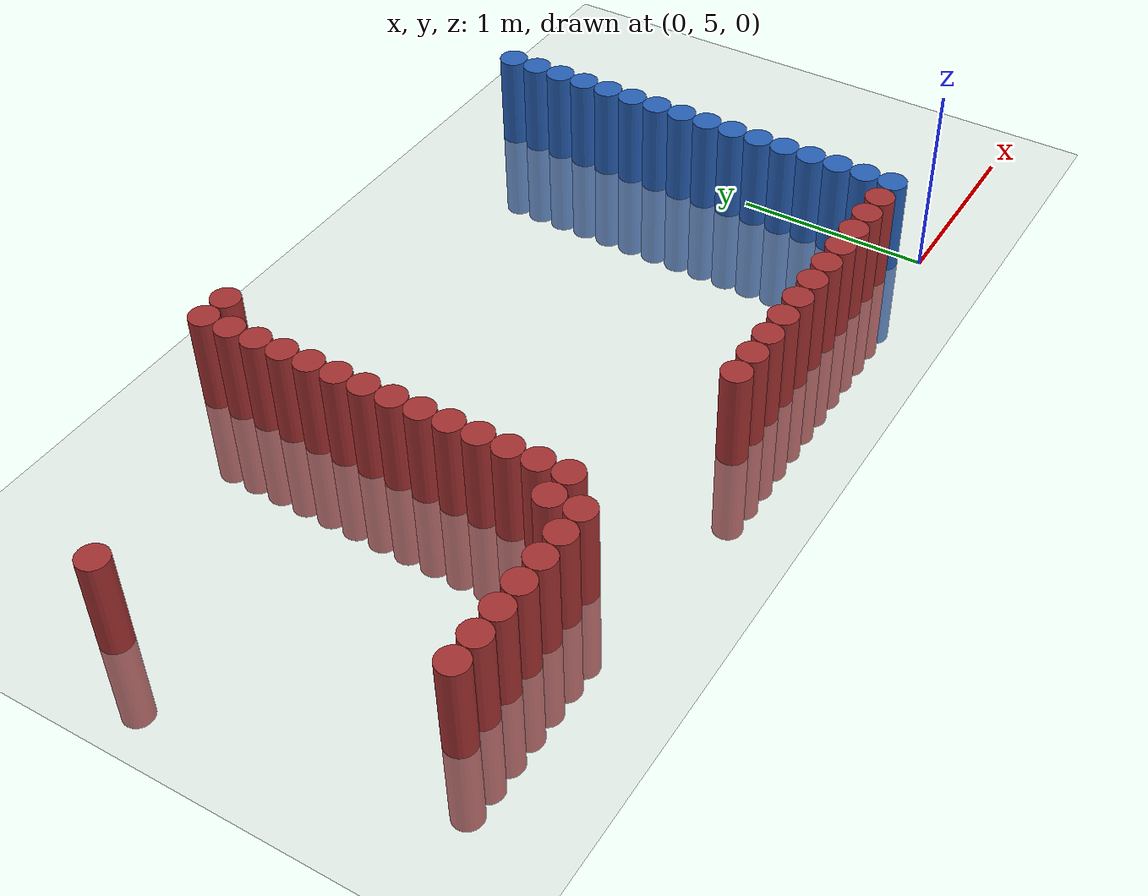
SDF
<sdf version="1.6">
 <world name="default">
  <model name="ground_plane">
   <static>1</static>
   <link name="link">
    <collision name="collision">
     <geometry><plane><normal>0 0 1</normal><size>100 100</size></plane></geometry>
     <surface><friction><ode><mu>100</mu><mu2>50</mu2></ode></friction></surface>
    </collision>
    <visual name="visual">
     <cast_shadows>0</cast_shadows>
     <geometry><plane><normal>0 0 1</normal><size>100 100</size></plane></geometry>
     <material>
      <script><uri>file://media/materials/scripts/gazebo.material</uri><name>Gazebo/Grey</name></script>
     </material>
    </visual>
   </link>
  </model>
  <model name="unit_cylinder_245">
   <static>1</static>
   <pose>-3.975000 6.825000 0.000000 0.000000 0.000000 0.000000</pose>
   <link name="link">
    <inertial>
     <mass>1</mass>
     <inertia><ixx>0.145833</ixx><ixy>0</ixy><ixz>0</ixz><iyy>0.145833</iyy><iyz>0</iyz><izz>0.125</izz></inertia>
    </inertial>
    <collision name="collision">
     <geometry><cylinder><radius>0.075000</radius><length>1</length></cylinder></geometry>
    </collision>
    <visual name="visual">
     <geometry><cylinder><radius>0.075000</radius><length>1</length></cylinder></geometry>
     <material>
      <ambient>0.648000 0.192000 0.192000 1</ambient>
      <diffuse>0.648000 0.192000 0.192000 1</diffuse>
     </material>
     <material>
      <script><name>Gazebo/Grey</name><uri>file://media/materials/scripts/gazebo.material</uri></script>
     </material>
    </visual>
   </link>
  </model>
  <model name="unit_cylinder_254">
   <static>1</static>
   <pose>-3.675000 5.325000 0.000000 0.000000 0.000000 0.000000</pose>
   <link name="link">
    <inertial>
     <mass>1</mass>
     <inertia><ixx>0.145833</ixx><ixy>0</ixy><ixz>0</ixz><iyy>0.145833</iyy><iyz>0</iyz><izz>0.125</izz></inertia>
    </inertial>
    <collision name="collision">
     <geometry><cylinder><radius>0.075000</radius><length>1</length></cylinder></geometry>
    </collision>
    <visual name="visual">
     <geometry><cylinder><radius>0.075000</radius><length>1</length></cylinder></geometry>
     <material>
      <ambient>0.648000 0.192000 0.192000 1</ambient>
      <diffuse>0.648000 0.192000 0.192000 1</diffuse>
     </material>
     <material>
      <script><name>Gazebo/Grey</name><uri>file://media/materials/scripts/gazebo.material</uri></script>
     </material>
    </visual>
   </link>
  </model>
  <model name="unit_cylinder_258">
   <static>1</static>
   <pose>-3.525000 5.325000 0.000000 0.000000 0.000000 0.000000</pose>
   <link name="link">
    <inertial>
     <mass>1</mass>
     <inertia><ixx>0.145833</ixx><ixy>0</ixy><ixz>0</ixz><iyy>0.145833</iyy><iyz>0</iyz><izz>0.125</izz></inertia>
    </inertial>
    <collision name="collision">
     <geometry><cylinder><radius>0.075000</radius><length>1</length></cylinder></geometry>
    </collision>
    <visual name="visual">
     <geometry><cylinder><radius>0.075000</radius><length>1</length></cylinder></geometry>
     <material>
      <ambient>0.648000 0.192000 0.192000 1</ambient>
      <diffuse>0.648000 0.192000 0.192000 1</diffuse>
     </material>
     <material>
      <script><name>Gazebo/Grey</name><uri>file://media/materials/scripts/gazebo.material</uri></script>
     </material>
    </visual>
   </link>
  </model>
  <model name="unit_cylinder_260">
   <static>1</static>
   <pose>-3.375000 5.325000 0.000000 0.000000 0.000000 0.000000</pose>
   <link name="link">
    <inertial>
     <mass>1</mass>
     <inertia><ixx>0.145833</ixx><ixy>0</ixy><ixz>0</ixz><iyy>0.145833</iyy><iyz>0</iyz><izz>0.125</izz></inertia>
    </inertial>
    <collision name="collision">
     <geometry><cylinder><radius>0.075000</radius><length>1</length></cylinder></geometry>
    </collision>
    <visual name="visual">
     <geometry><cylinder><radius>0.075000</radius><length>1</length></cylinder></geometry>
     <material>
      <ambient>0.648000 0.192000 0.192000 1</ambient>
      <diffuse>0.648000 0.192000 0.192000 1</diffuse>
     </material>
     <material>
      <script><name>Gazebo/Grey</name><uri>file://media/materials/scripts/gazebo.material</uri></script>
     </material>
    </visual>
   </link>
  </model>
  <model name="unit_cylinder_262">
   <static>1</static>
   <pose>-3.225000 5.325000 0.000000 0.000000 0.000000 0.000000</pose>
   <link name="link">
    <inertial>
     <mass>1</mass>
     <inertia><ixx>0.145833</ixx><ixy>0</ixy><ixz>0</ixz><iyy>0.145833</iyy><iyz>0</iyz><izz>0.125</izz></inertia>
    </inertial>
    <collision name="collision">
     <geometry><cylinder><radius>0.075000</radius><length>1</length></cylinder></geometry>
    </collision>
    <visual name="visual">
     <geometry><cylinder><radius>0.075000</radius><length>1</length></cylinder></geometry>
     <material>
      <ambient>0.648000 0.192000 0.192000 1</ambient>
      <diffuse>0.648000 0.192000 0.192000 1</diffuse>
     </material>
     <material>
      <script><name>Gazebo/Grey</name><uri>file://media/materials/scripts/gazebo.material</uri></script>
     </material>
    </visual>
   </link>
  </model>
  <model name="unit_cylinder_264">
   <static>1</static>
   <pose>-3.075000 5.325000 0.000000 0.000000 0.000000 0.000000</pose>
   <link name="link">
    <inertial>
     <mass>1</mass>
     <inertia><ixx>0.145833</ixx><ixy>0</ixy><ixz>0</ixz><iyy>0.145833</iyy><iyz>0</iyz><izz>0.125</izz></inertia>
    </inertial>
    <collision name="collision">
     <geometry><cylinder><radius>0.075000</radius><length>1</length></cylinder></geometry>
    </collision>
    <visual name="visual">
     <geometry><cylinder><radius>0.075000</radius><length>1</length></cylinder></geometry>
     <material>
      <ambient>0.648000 0.192000 0.192000 1</ambient>
      <diffuse>0.648000 0.192000 0.192000 1</diffuse>
     </material>
     <material>
      <script><name>Gazebo/Grey</name><uri>file://media/materials/scripts/gazebo.material</uri></script>
     </material>
    </visual>
   </link>
  </model>
  <model name="unit_cylinder_266">
   <static>1</static>
   <pose>-2.925000 5.325000 0.000000 0.000000 0.000000 0.000000</pose>
   <link name="link">
    <inertial>
     <mass>1</mass>
     <inertia><ixx>0.145833</ixx><ixy>0</ixy><ixz>0</ixz><iyy>0.145833</iyy><iyz>0</iyz><izz>0.125</izz></inertia>
    </inertial>
    <collision name="collision">
     <geometry><cylinder><radius>0.075000</radius><length>1</length></cylinder></geometry>
    </collision>
    <visual name="visual">
     <geometry><cylinder><radius>0.075000</radius><length>1</length></cylinder></geometry>
     <material>
      <ambient>0.648000 0.192000 0.192000 1</ambient>
      <diffuse>0.648000 0.192000 0.192000 1</diffuse>
     </material>
     <material>
      <script><name>Gazebo/Grey</name><uri>file://media/materials/scripts/gazebo.material</uri></script>
     </material>
    </visual>
   </link>
  </model>
  <model name="unit_cylinder_268">
   <static>1</static>
   <pose>-2.775000 5.325000 0.000000 0.000000 0.000000 0.000000</pose>
   <link name="link">
    <inertial>
     <mass>1</mass>
     <inertia><ixx>0.145833</ixx><ixy>0</ixy><ixz>0</ixz><iyy>0.145833</iyy><iyz>0</iyz><izz>0.125</izz></inertia>
    </inertial>
    <collision name="collision">
     <geometry><cylinder><radius>0.075000</radius><length>1</length></cylinder></geometry>
    </collision>
    <visual name="visual">
     <geometry><cylinder><radius>0.075000</radius><length>1</length></cylinder></geometry>
     <material>
      <ambient>0.648000 0.192000 0.192000 1</ambient>
      <diffuse>0.648000 0.192000 0.192000 1</diffuse>
     </material>
     <material>
      <script><name>Gazebo/Grey</name><uri>file://media/materials/scripts/gazebo.material</uri></script>
     </material>
    </visual>
   </link>
  </model>
  <model name="unit_cylinder_269">
   <static>1</static>
   <pose>-2.775000 5.475000 0.000000 0.000000 0.000000 0.000000</pose>
   <link name="link">
    <inertial>
     <mass>1</mass>
     <inertia><ixx>0.145833</ixx><ixy>0</ixy><ixz>0</ixz><iyy>0.145833</iyy><iyz>0</iyz><izz>0.125</izz></inertia>
    </inertial>
    <collision name="collision">
     <geometry><cylinder><radius>0.075000</radius><length>1</length></cylinder></geometry>
    </collision>
    <visual name="visual">
     <geometry><cylinder><radius>0.075000</radius><length>1</length></cylinder></geometry>
     <material>
      <ambient>0.648000 0.192000 0.192000 1</ambient>
      <diffuse>0.648000 0.192000 0.192000 1</diffuse>
     </material>
     <material>
      <script><name>Gazebo/Grey</name><uri>file://media/materials/scripts/gazebo.material</uri></script>
     </material>
    </visual>
   </link>
  </model>
  <model name="unit_cylinder_271">
   <static>1</static>
   <pose>-2.625000 5.475000 0.000000 0.000000 0.000000 0.000000</pose>
   <link name="link">
    <inertial>
     <mass>1</mass>
     <inertia><ixx>0.145833</ixx><ixy>0</ixy><ixz>0</ixz><iyy>0.145833</iyy><iyz>0</iyz><izz>0.125</izz></inertia>
    </inertial>
    <collision name="collision">
     <geometry><cylinder><radius>0.075000</radius><length>1</length></cylinder></geometry>
    </collision>
    <visual name="visual">
     <geometry><cylinder><radius>0.075000</radius><length>1</length></cylinder></geometry>
     <material>
      <ambient>0.648000 0.192000 0.192000 1</ambient>
      <diffuse>0.648000 0.192000 0.192000 1</diffuse>
     </material>
     <material>
      <script><name>Gazebo/Grey</name><uri>file://media/materials/scripts/gazebo.material</uri></script>
     </material>
    </visual>
   </link>
  </model>
  <model name="unit_cylinder_272">
   <static>1</static>
   <pose>-2.625000 5.625000 0.000000 0.000000 0.000000 0.000000</pose>
   <link name="link">
    <inertial>
     <mass>1</mass>
     <inertia><ixx>0.145833</ixx><ixy>0</ixy><ixz>0</ixz><iyy>0.145833</iyy><iyz>0</iyz><izz>0.125</izz></inertia>
    </inertial>
    <collision name="collision">
     <geometry><cylinder><radius>0.075000</radius><length>1</length></cylinder></geometry>
    </collision>
    <visual name="visual">
     <geometry><cylinder><radius>0.075000</radius><length>1</length></cylinder></geometry>
     <material>
      <ambient>0.648000 0.192000 0.192000 1</ambient>
      <diffuse>0.648000 0.192000 0.192000 1</diffuse>
     </material>
     <material>
      <script><name>Gazebo/Grey</name><uri>file://media/materials/scripts/gazebo.material</uri></script>
     </material>
    </visual>
   </link>
  </model>
  <model name="unit_cylinder_273">
   <static>1</static>
   <pose>-2.625000 5.775000 0.000000 0.000000 0.000000 0.000000</pose>
   <link name="link">
    <inertial>
     <mass>1</mass>
     <inertia><ixx>0.145833</ixx><ixy>0</ixy><ixz>0</ixz><iyy>0.145833</iyy><iyz>0</iyz><izz>0.125</izz></inertia>
    </inertial>
    <collision name="collision">
     <geometry><cylinder><radius>0.075000</radius><length>1</length></cylinder></geometry>
    </collision>
    <visual name="visual">
     <geometry><cylinder><radius>0.075000</radius><length>1</length></cylinder></geometry>
     <material>
      <ambient>0.648000 0.192000 0.192000 1</ambient>
      <diffuse>0.648000 0.192000 0.192000 1</diffuse>
     </material>
     <material>
      <script><name>Gazebo/Grey</name><uri>file://media/materials/scripts/gazebo.material</uri></script>
     </material>
    </visual>
   </link>
  </model>
  <model name="unit_cylinder_274">
   <static>1</static>
   <pose>-2.625000 5.925000 0.000000 0.000000 0.000000 0.000000</pose>
   <link name="link">
    <inertial>
     <mass>1</mass>
     <inertia><ixx>0.145833</ixx><ixy>0</ixy><ixz>0</ixz><iyy>0.145833</iyy><iyz>0</iyz><izz>0.125</izz></inertia>
    </inertial>
    <collision name="collision">
     <geometry><cylinder><radius>0.075000</radius><length>1</length></cylinder></geometry>
    </collision>
    <visual name="visual">
     <geometry><cylinder><radius>0.075000</radius><length>1</length></cylinder></geometry>
     <material>
      <ambient>0.648000 0.192000 0.192000 1</ambient>
      <diffuse>0.648000 0.192000 0.192000 1</diffuse>
     </material>
     <material>
      <script><name>Gazebo/Grey</name><uri>file://media/materials/scripts/gazebo.material</uri></script>
     </material>
    </visual>
   </link>
  </model>
  <model name="unit_cylinder_275">
   <static>1</static>
   <pose>-2.625000 6.075000 0.000000 0.000000 0.000000 0.000000</pose>
   <link name="link">
    <inertial>
     <mass>1</mass>
     <inertia><ixx>0.145833</ixx><ixy>0</ixy><ixz>0</ixz><iyy>0.145833</iyy><iyz>0</iyz><izz>0.125</izz></inertia>
    </inertial>
    <collision name="collision">
     <geometry><cylinder><radius>0.075000</radius><length>1</length></cylinder></geometry>
    </collision>
    <visual name="visual">
     <geometry><cylinder><radius>0.075000</radius><length>1</length></cylinder></geometry>
     <material>
      <ambient>0.648000 0.192000 0.192000 1</ambient>
      <diffuse>0.648000 0.192000 0.192000 1</diffuse>
     </material>
     <material>
      <script><name>Gazebo/Grey</name><uri>file://media/materials/scripts/gazebo.material</uri></script>
     </material>
    </visual>
   </link>
  </model>
  <model name="unit_cylinder_276">
   <static>1</static>
   <pose>-2.625000 6.225000 0.000000 0.000000 0.000000 0.000000</pose>
   <link name="link">
    <inertial>
     <mass>1</mass>
     <inertia><ixx>0.145833</ixx><ixy>0</ixy><ixz>0</ixz><iyy>0.145833</iyy><iyz>0</iyz><izz>0.125</izz></inertia>
    </inertial>
    <collision name="collision">
     <geometry><cylinder><radius>0.075000</radius><length>1</length></cylinder></geometry>
    </collision>
    <visual name="visual">
     <geometry><cylinder><radius>0.075000</radius><length>1</length></cylinder></geometry>
     <material>
      <ambient>0.648000 0.192000 0.192000 1</ambient>
      <diffuse>0.648000 0.192000 0.192000 1</diffuse>
     </material>
     <material>
      <script><name>Gazebo/Grey</name><uri>file://media/materials/scripts/gazebo.material</uri></script>
     </material>
    </visual>
   </link>
  </model>
  <model name="unit_cylinder_277">
   <static>1</static>
   <pose>-2.625000 6.375000 0.000000 0.000000 0.000000 0.000000</pose>
   <link name="link">
    <inertial>
     <mass>1</mass>
     <inertia><ixx>0.145833</ixx><ixy>0</ixy><ixz>0</ixz><iyy>0.145833</iyy><iyz>0</iyz><izz>0.125</izz></inertia>
    </inertial>
    <collision name="collision">
     <geometry><cylinder><radius>0.075000</radius><length>1</length></cylinder></geometry>
    </collision>
    <visual name="visual">
     <geometry><cylinder><radius>0.075000</radius><length>1</length></cylinder></geometry>
     <material>
      <ambient>0.648000 0.192000 0.192000 1</ambient>
      <diffuse>0.648000 0.192000 0.192000 1</diffuse>
     </material>
     <material>
      <script><name>Gazebo/Grey</name><uri>file://media/materials/scripts/gazebo.material</uri></script>
     </material>
    </visual>
   </link>
  </model>
  <model name="unit_cylinder_278">
   <static>1</static>
   <pose>-2.625000 6.525000 0.000000 0.000000 0.000000 0.000000</pose>
   <link name="link">
    <inertial>
     <mass>1</mass>
     <inertia><ixx>0.145833</ixx><ixy>0</ixy><ixz>0</ixz><iyy>0.145833</iyy><iyz>0</iyz><izz>0.125</izz></inertia>
    </inertial>
    <collision name="collision">
     <geometry><cylinder><radius>0.075000</radius><length>1</length></cylinder></geometry>
    </collision>
    <visual name="visual">
     <geometry><cylinder><radius>0.075000</radius><length>1</length></cylinder></geometry>
     <material>
      <ambient>0.648000 0.192000 0.192000 1</ambient>
      <diffuse>0.648000 0.192000 0.192000 1</diffuse>
     </material>
     <material>
      <script><name>Gazebo/Grey</name><uri>file://media/materials/scripts/gazebo.material</uri></script>
     </material>
    </visual>
   </link>
  </model>
  <model name="unit_cylinder_279">
   <static>1</static>
   <pose>-2.625000 6.675000 0.000000 0.000000 0.000000 0.000000</pose>
   <link name="link">
    <inertial>
     <mass>1</mass>
     <inertia><ixx>0.145833</ixx><ixy>0</ixy><ixz>0</ixz><iyy>0.145833</iyy><iyz>0</iyz><izz>0.125</izz></inertia>
    </inertial>
    <collision name="collision">
     <geometry><cylinder><radius>0.075000</radius><length>1</length></cylinder></geometry>
    </collision>
    <visual name="visual">
     <geometry><cylinder><radius>0.075000</radius><length>1</length></cylinder></geometry>
     <material>
      <ambient>0.648000 0.192000 0.192000 1</ambient>
      <diffuse>0.648000 0.192000 0.192000 1</diffuse>
     </material>
     <material>
      <script><name>Gazebo/Grey</name><uri>file://media/materials/scripts/gazebo.material</uri></script>
     </material>
    </visual>
   </link>
  </model>
  <model name="unit_cylinder_280">
   <static>1</static>
   <pose>-2.625000 6.825000 0.000000 0.000000 0.000000 0.000000</pose>
   <link name="link">
    <inertial>
     <mass>1</mass>
     <inertia><ixx>0.145833</ixx><ixy>0</ixy><ixz>0</ixz><iyy>0.145833</iyy><iyz>0</iyz><izz>0.125</izz></inertia>
    </inertial>
    <collision name="collision">
     <geometry><cylinder><radius>0.075000</radius><length>1</length></cylinder></geometry>
    </collision>
    <visual name="visual">
     <geometry><cylinder><radius>0.075000</radius><length>1</length></cylinder></geometry>
     <material>
      <ambient>0.648000 0.192000 0.192000 1</ambient>
      <diffuse>0.648000 0.192000 0.192000 1</diffuse>
     </material>
     <material>
      <script><name>Gazebo/Grey</name><uri>file://media/materials/scripts/gazebo.material</uri></script>
     </material>
    </visual>
   </link>
  </model>
  <model name="unit_cylinder_281">
   <static>1</static>
   <pose>-2.625000 6.975000 0.000000 0.000000 0.000000 0.000000</pose>
   <link name="link">
    <inertial>
     <mass>1</mass>
     <inertia><ixx>0.145833</ixx><ixy>0</ixy><ixz>0</ixz><iyy>0.145833</iyy><iyz>0</iyz><izz>0.125</izz></inertia>
    </inertial>
    <collision name="collision">
     <geometry><cylinder><radius>0.075000</radius><length>1</length></cylinder></geometry>
    </collision>
    <visual name="visual">
     <geometry><cylinder><radius>0.075000</radius><length>1</length></cylinder></geometry>
     <material>
      <ambient>0.648000 0.192000 0.192000 1</ambient>
      <diffuse>0.648000 0.192000 0.192000 1</diffuse>
     </material>
     <material>
      <script><name>Gazebo/Grey</name><uri>file://media/materials/scripts/gazebo.material</uri></script>
     </material>
    </visual>
   </link>
  </model>
  <model name="unit_cylinder_282">
   <static>1</static>
   <pose>-2.625000 7.125000 0.000000 0.000000 0.000000 0.000000</pose>
   <link name="link">
    <inertial>
     <mass>1</mass>
     <inertia><ixx>0.145833</ixx><ixy>0</ixy><ixz>0</ixz><iyy>0.145833</iyy><iyz>0</iyz><izz>0.125</izz></inertia>
    </inertial>
    <collision name="collision">
     <geometry><cylinder><radius>0.075000</radius><length>1</length></cylinder></geometry>
    </collision>
    <visual name="visual">
     <geometry><cylinder><radius>0.075000</radius><length>1</length></cylinder></geometry>
     <material>
      <ambient>0.648000 0.192000 0.192000 1</ambient>
      <diffuse>0.648000 0.192000 0.192000 1</diffuse>
     </material>
     <material>
      <script><name>Gazebo/Grey</name><uri>file://media/materials/scripts/gazebo.material</uri></script>
     </material>
    </visual>
   </link>
  </model>
  <model name="unit_cylinder_283">
   <static>1</static>
   <pose>-2.625000 7.275000 0.000000 0.000000 0.000000 0.000000</pose>
   <link name="link">
    <inertial>
     <mass>1</mass>
     <inertia><ixx>0.145833</ixx><ixy>0</ixy><ixz>0</ixz><iyy>0.145833</iyy><iyz>0</iyz><izz>0.125</izz></inertia>
    </inertial>
    <collision name="collision">
     <geometry><cylinder><radius>0.075000</radius><length>1</length></cylinder></geometry>
    </collision>
    <visual name="visual">
     <geometry><cylinder><radius>0.075000</radius><length>1</length></cylinder></geometry>
     <material>
      <ambient>0.648000 0.192000 0.192000 1</ambient>
      <diffuse>0.648000 0.192000 0.192000 1</diffuse>
     </material>
     <material>
      <script><name>Gazebo/Grey</name><uri>file://media/materials/scripts/gazebo.material</uri></script>
     </material>
    </visual>
   </link>
  </model>
  <model name="unit_cylinder_284">
   <static>1</static>
   <pose>-2.625000 7.425000 0.000000 0.000000 0.000000 0.000000</pose>
   <link name="link">
    <inertial>
     <mass>1</mass>
     <inertia><ixx>0.145833</ixx><ixy>0</ixy><ixz>0</ixz><iyy>0.145833</iyy><iyz>0</iyz><izz>0.125</izz></inertia>
    </inertial>
    <collision name="collision">
     <geometry><cylinder><radius>0.075000</radius><length>1</length></cylinder></geometry>
    </collision>
    <visual name="visual">
     <geometry><cylinder><radius>0.075000</radius><length>1</length></cylinder></geometry>
     <material>
      <ambient>0.648000 0.192000 0.192000 1</ambient>
      <diffuse>0.648000 0.192000 0.192000 1</diffuse>
     </material>
     <material>
      <script><name>Gazebo/Grey</name><uri>file://media/materials/scripts/gazebo.material</uri></script>
     </material>
    </visual>
   </link>
  </model>
  <model name="unit_cylinder_286">
   <static>1</static>
   <pose>-2.475000 7.425000 0.000000 0.000000 0.000000 0.000000</pose>
   <link name="link">
    <inertial>
     <mass>1</mass>
     <inertia><ixx>0.145833</ixx><ixy>0</ixy><ixz>0</ixz><iyy>0.145833</iyy><iyz>0</iyz><izz>0.125</izz></inertia>
    </inertial>
    <collision name="collision">
     <geometry><cylinder><radius>0.075000</radius><length>1</length></cylinder></geometry>
    </collision>
    <visual name="visual">
     <geometry><cylinder><radius>0.075000</radius><length>1</length></cylinder></geometry>
     <material>
      <ambient>0.648000 0.192000 0.192000 1</ambient>
      <diffuse>0.648000 0.192000 0.192000 1</diffuse>
     </material>
     <material>
      <script><name>Gazebo/Grey</name><uri>file://media/materials/scripts/gazebo.material</uri></script>
     </material>
    </visual>
   </link>
  </model>
  <model name="unit_cylinder_309">
   <static>1</static>
   <pose>-1.725000 5.175000 0.000000 0.000000 0.000000 0.000000</pose>
   <link name="link">
    <inertial>
     <mass>1</mass>
     <inertia><ixx>0.145833</ixx><ixy>0</ixy><ixz>0</ixz><iyy>0.145833</iyy><iyz>0</iyz><izz>0.125</izz></inertia>
    </inertial>
    <collision name="collision">
     <geometry><cylinder><radius>0.075000</radius><length>1</length></cylinder></geometry>
    </collision>
    <visual name="visual">
     <geometry><cylinder><radius>0.075000</radius><length>1</length></cylinder></geometry>
     <material>
      <ambient>0.648000 0.192000 0.192000 1</ambient>
      <diffuse>0.648000 0.192000 0.192000 1</diffuse>
     </material>
     <material>
      <script><name>Gazebo/Grey</name><uri>file://media/materials/scripts/gazebo.material</uri></script>
     </material>
    </visual>
   </link>
  </model>
  <model name="unit_cylinder_311">
   <static>1</static>
   <pose>-1.575000 5.175000 0.000000 0.000000 0.000000 0.000000</pose>
   <link name="link">
    <inertial>
     <mass>1</mass>
     <inertia><ixx>0.145833</ixx><ixy>0</ixy><ixz>0</ixz><iyy>0.145833</iyy><iyz>0</iyz><izz>0.125</izz></inertia>
    </inertial>
    <collision name="collision">
     <geometry><cylinder><radius>0.075000</radius><length>1</length></cylinder></geometry>
    </collision>
    <visual name="visual">
     <geometry><cylinder><radius>0.075000</radius><length>1</length></cylinder></geometry>
     <material>
      <ambient>0.648000 0.192000 0.192000 1</ambient>
      <diffuse>0.648000 0.192000 0.192000 1</diffuse>
     </material>
     <material>
      <script><name>Gazebo/Grey</name><uri>file://media/materials/scripts/gazebo.material</uri></script>
     </material>
    </visual>
   </link>
  </model>
  <model name="unit_cylinder_313">
   <static>1</static>
   <pose>-1.425000 5.175000 0.000000 0.000000 0.000000 0.000000</pose>
   <link name="link">
    <inertial>
     <mass>1</mass>
     <inertia><ixx>0.145833</ixx><ixy>0</ixy><ixz>0</ixz><iyy>0.145833</iyy><iyz>0</iyz><izz>0.125</izz></inertia>
    </inertial>
    <collision name="collision">
     <geometry><cylinder><radius>0.075000</radius><length>1</length></cylinder></geometry>
    </collision>
    <visual name="visual">
     <geometry><cylinder><radius>0.075000</radius><length>1</length></cylinder></geometry>
     <material>
      <ambient>0.648000 0.192000 0.192000 1</ambient>
      <diffuse>0.648000 0.192000 0.192000 1</diffuse>
     </material>
     <material>
      <script><name>Gazebo/Grey</name><uri>file://media/materials/scripts/gazebo.material</uri></script>
     </material>
    </visual>
   </link>
  </model>
  <model name="unit_cylinder_315">
   <static>1</static>
   <pose>-1.275000 5.175000 0.000000 0.000000 0.000000 0.000000</pose>
   <link name="link">
    <inertial>
     <mass>1</mass>
     <inertia><ixx>0.145833</ixx><ixy>0</ixy><ixz>0</ixz><iyy>0.145833</iyy><iyz>0</iyz><izz>0.125</izz></inertia>
    </inertial>
    <collision name="collision">
     <geometry><cylinder><radius>0.075000</radius><length>1</length></cylinder></geometry>
    </collision>
    <visual name="visual">
     <geometry><cylinder><radius>0.075000</radius><length>1</length></cylinder></geometry>
     <material>
      <ambient>0.648000 0.192000 0.192000 1</ambient>
      <diffuse>0.648000 0.192000 0.192000 1</diffuse>
     </material>
     <material>
      <script><name>Gazebo/Grey</name><uri>file://media/materials/scripts/gazebo.material</uri></script>
     </material>
    </visual>
   </link>
  </model>
  <model name="unit_cylinder_317">
   <static>1</static>
   <pose>-1.125000 5.175000 0.000000 0.000000 0.000000 0.000000</pose>
   <link name="link">
    <inertial>
     <mass>1</mass>
     <inertia><ixx>0.145833</ixx><ixy>0</ixy><ixz>0</ixz><iyy>0.145833</iyy><iyz>0</iyz><izz>0.125</izz></inertia>
    </inertial>
    <collision name="collision">
     <geometry><cylinder><radius>0.075000</radius><length>1</length></cylinder></geometry>
    </collision>
    <visual name="visual">
     <geometry><cylinder><radius>0.075000</radius><length>1</length></cylinder></geometry>
     <material>
      <ambient>0.648000 0.192000 0.192000 1</ambient>
      <diffuse>0.648000 0.192000 0.192000 1</diffuse>
     </material>
     <material>
      <script><name>Gazebo/Grey</name><uri>file://media/materials/scripts/gazebo.material</uri></script>
     </material>
    </visual>
   </link>
  </model>
  <model name="unit_cylinder_319">
   <static>1</static>
   <pose>-0.975000 5.175000 0.000000 0.000000 0.000000 0.000000</pose>
   <link name="link">
    <inertial>
     <mass>1</mass>
     <inertia><ixx>0.145833</ixx><ixy>0</ixy><ixz>0</ixz><iyy>0.145833</iyy><iyz>0</iyz><izz>0.125</izz></inertia>
    </inertial>
    <collision name="collision">
     <geometry><cylinder><radius>0.075000</radius><length>1</length></cylinder></geometry>
    </collision>
    <visual name="visual">
     <geometry><cylinder><radius>0.075000</radius><length>1</length></cylinder></geometry>
     <material>
      <ambient>0.648000 0.192000 0.192000 1</ambient>
      <diffuse>0.648000 0.192000 0.192000 1</diffuse>
     </material>
     <material>
      <script><name>Gazebo/Grey</name><uri>file://media/materials/scripts/gazebo.material</uri></script>
     </material>
    </visual>
   </link>
  </model>
  <model name="unit_cylinder_321">
   <static>1</static>
   <pose>-0.825000 5.175000 0.000000 0.000000 0.000000 0.000000</pose>
   <link name="link">
    <inertial>
     <mass>1</mass>
     <inertia><ixx>0.145833</ixx><ixy>0</ixy><ixz>0</ixz><iyy>0.145833</iyy><iyz>0</iyz><izz>0.125</izz></inertia>
    </inertial>
    <collision name="collision">
     <geometry><cylinder><radius>0.075000</radius><length>1</length></cylinder></geometry>
    </collision>
    <visual name="visual">
     <geometry><cylinder><radius>0.075000</radius><length>1</length></cylinder></geometry>
     <material>
      <ambient>0.648000 0.192000 0.192000 1</ambient>
      <diffuse>0.648000 0.192000 0.192000 1</diffuse>
     </material>
     <material>
      <script><name>Gazebo/Grey</name><uri>file://media/materials/scripts/gazebo.material</uri></script>
     </material>
    </visual>
   </link>
  </model>
  <model name="unit_cylinder_323">
   <static>1</static>
   <pose>-0.675000 5.175000 0.000000 0.000000 0.000000 0.000000</pose>
   <link name="link">
    <inertial>
     <mass>1</mass>
     <inertia><ixx>0.145833</ixx><ixy>0</ixy><ixz>0</ixz><iyy>0.145833</iyy><iyz>0</iyz><izz>0.125</izz></inertia>
    </inertial>
    <collision name="collision">
     <geometry><cylinder><radius>0.075000</radius><length>1</length></cylinder></geometry>
    </collision>
    <visual name="visual">
     <geometry><cylinder><radius>0.075000</radius><length>1</length></cylinder></geometry>
     <material>
      <ambient>0.648000 0.192000 0.192000 1</ambient>
      <diffuse>0.648000 0.192000 0.192000 1</diffuse>
     </material>
     <material>
      <script><name>Gazebo/Grey</name><uri>file://media/materials/scripts/gazebo.material</uri></script>
     </material>
    </visual>
   </link>
  </model>
  <model name="unit_cylinder_325">
   <static>1</static>
   <pose>-0.525000 5.175000 0.000000 0.000000 0.000000 0.000000</pose>
   <link name="link">
    <inertial>
     <mass>1</mass>
     <inertia><ixx>0.145833</ixx><ixy>0</ixy><ixz>0</ixz><iyy>0.145833</iyy><iyz>0</iyz><izz>0.125</izz></inertia>
    </inertial>
    <collision name="collision">
     <geometry><cylinder><radius>0.075000</radius><length>1</length></cylinder></geometry>
    </collision>
    <visual name="visual">
     <geometry><cylinder><radius>0.075000</radius><length>1</length></cylinder></geometry>
     <material>
      <ambient>0.648000 0.192000 0.192000 1</ambient>
      <diffuse>0.648000 0.192000 0.192000 1</diffuse>
     </material>
     <material>
      <script><name>Gazebo/Grey</name><uri>file://media/materials/scripts/gazebo.material</uri></script>
     </material>
    </visual>
   </link>
  </model>
  <model name="unit_cylinder_327">
   <static>1</static>
   <pose>-0.375000 5.175000 0.000000 0.000000 0.000000 0.000000</pose>
   <link name="link">
    <inertial>
     <mass>1</mass>
     <inertia><ixx>0.145833</ixx><ixy>0</ixy><ixz>0</ixz><iyy>0.145833</iyy><iyz>0</iyz><izz>0.125</izz></inertia>
    </inertial>
    <collision name="collision">
     <geometry><cylinder><radius>0.075000</radius><length>1</length></cylinder></geometry>
    </collision>
    <visual name="visual">
     <geometry><cylinder><radius>0.075000</radius><length>1</length></cylinder></geometry>
     <material>
      <ambient>0.648000 0.192000 0.192000 1</ambient>
      <diffuse>0.648000 0.192000 0.192000 1</diffuse>
     </material>
     <material>
      <script><name>Gazebo/Grey</name><uri>file://media/materials/scripts/gazebo.material</uri></script>
     </material>
    </visual>
   </link>
  </model>
  <model name="unit_cylinder_329">
   <static>1</static>
   <pose>-0.225000 5.175000 0.000000 0.000000 0.000000 0.000000</pose>
   <link name="link">
    <inertial>
     <mass>1</mass>
     <inertia><ixx>0.145833</ixx><ixy>0</ixy><ixz>0</ixz><iyy>0.145833</iyy><iyz>0</iyz><izz>0.125</izz></inertia>
    </inertial>
    <collision name="collision">
     <geometry><cylinder><radius>0.075000</radius><length>1</length></cylinder></geometry>
    </collision>
    <visual name="visual">
     <geometry><cylinder><radius>0.075000</radius><length>1</length></cylinder></geometry>
     <material>
      <ambient>0.648000 0.192000 0.192000 1</ambient>
      <diffuse>0.648000 0.192000 0.192000 1</diffuse>
     </material>
     <material>
      <script><name>Gazebo/Grey</name><uri>file://media/materials/scripts/gazebo.material</uri></script>
     </material>
    </visual>
   </link>
  </model>
  <model name="unit_cylinder_331">
   <static>1</static>
   <pose>-0.075000 5.175000 0.000000 0.000000 0.000000 0.000000</pose>
   <link name="link">
    <inertial>
     <mass>1</mass>
     <inertia><ixx>0.145833</ixx><ixy>0</ixy><ixz>0</ixz><iyy>0.145833</iyy><iyz>0</iyz><izz>0.125</izz></inertia>
    </inertial>
    <collision name="collision">
     <geometry><cylinder><radius>0.075000</radius><length>1</length></cylinder></geometry>
    </collision>
    <visual name="visual">
     <geometry><cylinder><radius>0.075000</radius><length>1</length></cylinder></geometry>
     <material>
      <ambient>0.152000 0.379000 0.720000 1</ambient>
      <diffuse>0.152000 0.379000 0.720000 1</diffuse>
     </material>
     <material>
      <script><name>Gazebo/Grey</name><uri>file://media/materials/scripts/gazebo.material</uri></script>
     </material>
    </visual>
   </link>
  </model>
  <model name="unit_cylinder_332">
   <static>1</static>
   <pose>-0.075000 5.325000 0.000000 0.000000 0.000000 0.000000</pose>
   <link name="link">
    <inertial>
     <mass>1</mass>
     <inertia><ixx>0.145833</ixx><ixy>0</ixy><ixz>0</ixz><iyy>0.145833</iyy><iyz>0</iyz><izz>0.125</izz></inertia>
    </inertial>
    <collision name="collision">
     <geometry><cylinder><radius>0.075000</radius><length>1</length></cylinder></geometry>
    </collision>
    <visual name="visual">
     <geometry><cylinder><radius>0.075000</radius><length>1</length></cylinder></geometry>
     <material>
      <ambient>0.152000 0.379000 0.720000 1</ambient>
      <diffuse>0.152000 0.379000 0.720000 1</diffuse>
     </material>
     <material>
      <script><name>Gazebo/Grey</name><uri>file://media/materials/scripts/gazebo.material</uri></script>
     </material>
    </visual>
   </link>
  </model>
  <model name="unit_cylinder_333">
   <static>1</static>
   <pose>-0.075000 5.475000 0.000000 0.000000 0.000000 0.000000</pose>
   <link name="link">
    <inertial>
     <mass>1</mass>
     <inertia><ixx>0.145833</ixx><ixy>0</ixy><ixz>0</ixz><iyy>0.145833</iyy><iyz>0</iyz><izz>0.125</izz></inertia>
    </inertial>
    <collision name="collision">
     <geometry><cylinder><radius>0.075000</radius><length>1</length></cylinder></geometry>
    </collision>
    <visual name="visual">
     <geometry><cylinder><radius>0.075000</radius><length>1</length></cylinder></geometry>
     <material>
      <ambient>0.152000 0.379000 0.720000 1</ambient>
      <diffuse>0.152000 0.379000 0.720000 1</diffuse>
     </material>
     <material>
      <script><name>Gazebo/Grey</name><uri>file://media/materials/scripts/gazebo.material</uri></script>
     </material>
    </visual>
   </link>
  </model>
  <model name="unit_cylinder_334">
   <static>1</static>
   <pose>-0.075000 5.625000 0.000000 0.000000 0.000000 0.000000</pose>
   <link name="link">
    <inertial>
     <mass>1</mass>
     <inertia><ixx>0.145833</ixx><ixy>0</ixy><ixz>0</ixz><iyy>0.145833</iyy><iyz>0</iyz><izz>0.125</izz></inertia>
    </inertial>
    <collision name="collision">
     <geometry><cylinder><radius>0.075000</radius><length>1</length></cylinder></geometry>
    </collision>
    <visual name="visual">
     <geometry><cylinder><radius>0.075000</radius><length>1</length></cylinder></geometry>
     <material>
      <ambient>0.152000 0.379000 0.720000 1</ambient>
      <diffuse>0.152000 0.379000 0.720000 1</diffuse>
     </material>
     <material>
      <script><name>Gazebo/Grey</name><uri>file://media/materials/scripts/gazebo.material</uri></script>
     </material>
    </visual>
   </link>
  </model>
  <model name="unit_cylinder_335">
   <static>1</static>
   <pose>-0.075000 5.775000 0.000000 0.000000 0.000000 0.000000</pose>
   <link name="link">
    <inertial>
     <mass>1</mass>
     <inertia><ixx>0.145833</ixx><ixy>0</ixy><ixz>0</ixz><iyy>0.145833</iyy><iyz>0</iyz><izz>0.125</izz></inertia>
    </inertial>
    <collision name="collision">
     <geometry><cylinder><radius>0.075000</radius><length>1</length></cylinder></geometry>
    </collision>
    <visual name="visual">
     <geometry><cylinder><radius>0.075000</radius><length>1</length></cylinder></geometry>
     <material>
      <ambient>0.152000 0.379000 0.720000 1</ambient>
      <diffuse>0.152000 0.379000 0.720000 1</diffuse>
     </material>
     <material>
      <script><name>Gazebo/Grey</name><uri>file://media/materials/scripts/gazebo.material</uri></script>
     </material>
    </visual>
   </link>
  </model>
  <model name="unit_cylinder_336">
   <static>1</static>
   <pose>-0.075000 5.925000 0.000000 0.000000 0.000000 0.000000</pose>
   <link name="link">
    <inertial>
     <mass>1</mass>
     <inertia><ixx>0.145833</ixx><ixy>0</ixy><ixz>0</ixz><iyy>0.145833</iyy><iyz>0</iyz><izz>0.125</izz></inertia>
    </inertial>
    <collision name="collision">
     <geometry><cylinder><radius>0.075000</radius><length>1</length></cylinder></geometry>
    </collision>
    <visual name="visual">
     <geometry><cylinder><radius>0.075000</radius><length>1</length></cylinder></geometry>
     <material>
      <ambient>0.152000 0.379000 0.720000 1</ambient>
      <diffuse>0.152000 0.379000 0.720000 1</diffuse>
     </material>
     <material>
      <script><name>Gazebo/Grey</name><uri>file://media/materials/scripts/gazebo.material</uri></script>
     </material>
    </visual>
   </link>
  </model>
  <model name="unit_cylinder_337">
   <static>1</static>
   <pose>-0.075000 6.075000 0.000000 0.000000 0.000000 0.000000</pose>
   <link name="link">
    <inertial>
     <mass>1</mass>
     <inertia><ixx>0.145833</ixx><ixy>0</ixy><ixz>0</ixz><iyy>0.145833</iyy><iyz>0</iyz><izz>0.125</izz></inertia>
    </inertial>
    <collision name="collision">
     <geometry><cylinder><radius>0.075000</radius><length>1</length></cylinder></geometry>
    </collision>
    <visual name="visual">
     <geometry><cylinder><radius>0.075000</radius><length>1</length></cylinder></geometry>
     <material>
      <ambient>0.152000 0.379000 0.720000 1</ambient>
      <diffuse>0.152000 0.379000 0.720000 1</diffuse>
     </material>
     <material>
      <script><name>Gazebo/Grey</name><uri>file://media/materials/scripts/gazebo.material</uri></script>
     </material>
    </visual>
   </link>
  </model>
  <model name="unit_cylinder_338">
   <static>1</static>
   <pose>-0.075000 6.225000 0.000000 0.000000 0.000000 0.000000</pose>
   <link name="link">
    <inertial>
     <mass>1</mass>
     <inertia><ixx>0.145833</ixx><ixy>0</ixy><ixz>0</ixz><iyy>0.145833</iyy><iyz>0</iyz><izz>0.125</izz></inertia>
    </inertial>
    <collision name="collision">
     <geometry><cylinder><radius>0.075000</radius><length>1</length></cylinder></geometry>
    </collision>
    <visual name="visual">
     <geometry><cylinder><radius>0.075000</radius><length>1</length></cylinder></geometry>
     <material>
      <ambient>0.152000 0.379000 0.720000 1</ambient>
      <diffuse>0.152000 0.379000 0.720000 1</diffuse>
     </material>
     <material>
      <script><name>Gazebo/Grey</name><uri>file://media/materials/scripts/gazebo.material</uri></script>
     </material>
    </visual>
   </link>
  </model>
  <model name="unit_cylinder_339">
   <static>1</static>
   <pose>-0.075000 6.375000 0.000000 0.000000 0.000000 0.000000</pose>
   <link name="link">
    <inertial>
     <mass>1</mass>
     <inertia><ixx>0.145833</ixx><ixy>0</ixy><ixz>0</ixz><iyy>0.145833</iyy><iyz>0</iyz><izz>0.125</izz></inertia>
    </inertial>
    <collision name="collision">
     <geometry><cylinder><radius>0.075000</radius><length>1</length></cylinder></geometry>
    </collision>
    <visual name="visual">
     <geometry><cylinder><radius>0.075000</radius><length>1</length></cylinder></geometry>
     <material>
      <ambient>0.152000 0.379000 0.720000 1</ambient>
      <diffuse>0.152000 0.379000 0.720000 1</diffuse>
     </material>
     <material>
      <script><name>Gazebo/Grey</name><uri>file://media/materials/scripts/gazebo.material</uri></script>
     </material>
    </visual>
   </link>
  </model>
  <model name="unit_cylinder_340">
   <static>1</static>
   <pose>-0.075000 6.525000 0.000000 0.000000 0.000000 0.000000</pose>
   <link name="link">
    <inertial>
     <mass>1</mass>
     <inertia><ixx>0.145833</ixx><ixy>0</ixy><ixz>0</ixz><iyy>0.145833</iyy><iyz>0</iyz><izz>0.125</izz></inertia>
    </inertial>
    <collision name="collision">
     <geometry><cylinder><radius>0.075000</radius><length>1</length></cylinder></geometry>
    </collision>
    <visual name="visual">
     <geometry><cylinder><radius>0.075000</radius><length>1</length></cylinder></geometry>
     <material>
      <ambient>0.152000 0.379000 0.720000 1</ambient>
      <diffuse>0.152000 0.379000 0.720000 1</diffuse>
     </material>
     <material>
      <script><name>Gazebo/Grey</name><uri>file://media/materials/scripts/gazebo.material</uri></script>
     </material>
    </visual>
   </link>
  </model>
  <model name="unit_cylinder_341">
   <static>1</static>
   <pose>-0.075000 6.675000 0.000000 0.000000 0.000000 0.000000</pose>
   <link name="link">
    <inertial>
     <mass>1</mass>
     <inertia><ixx>0.145833</ixx><ixy>0</ixy><ixz>0</ixz><iyy>0.145833</iyy><iyz>0</iyz><izz>0.125</izz></inertia>
    </inertial>
    <collision name="collision">
     <geometry><cylinder><radius>0.075000</radius><length>1</length></cylinder></geometry>
    </collision>
    <visual name="visual">
     <geometry><cylinder><radius>0.075000</radius><length>1</length></cylinder></geometry>
     <material>
      <ambient>0.152000 0.379000 0.720000 1</ambient>
      <diffuse>0.152000 0.379000 0.720000 1</diffuse>
     </material>
     <material>
      <script><name>Gazebo/Grey</name><uri>file://media/materials/scripts/gazebo.material</uri></script>
     </material>
    </visual>
   </link>
  </model>
  <model name="unit_cylinder_342">
   <static>1</static>
   <pose>-0.075000 6.825000 0.000000 0.000000 0.000000 0.000000</pose>
   <link name="link">
    <inertial>
     <mass>1</mass>
     <inertia><ixx>0.145833</ixx><ixy>0</ixy><ixz>0</ixz><iyy>0.145833</iyy><iyz>0</iyz><izz>0.125</izz></inertia>
    </inertial>
    <collision name="collision">
     <geometry><cylinder><radius>0.075000</radius><length>1</length></cylinder></geometry>
    </collision>
    <visual name="visual">
     <geometry><cylinder><radius>0.075000</radius><length>1</length></cylinder></geometry>
     <material>
      <ambient>0.152000 0.379000 0.720000 1</ambient>
      <diffuse>0.152000 0.379000 0.720000 1</diffuse>
     </material>
     <material>
      <script><name>Gazebo/Grey</name><uri>file://media/materials/scripts/gazebo.material</uri></script>
     </material>
    </visual>
   </link>
  </model>
  <model name="unit_cylinder_343">
   <static>1</static>
   <pose>-0.075000 6.975000 0.000000 0.000000 0.000000 0.000000</pose>
   <link name="link">
    <inertial>
     <mass>1</mass>
     <inertia><ixx>0.145833</ixx><ixy>0</ixy><ixz>0</ixz><iyy>0.145833</iyy><iyz>0</iyz><izz>0.125</izz></inertia>
    </inertial>
    <collision name="collision">
     <geometry><cylinder><radius>0.075000</radius><length>1</length></cylinder></geometry>
    </collision>
    <visual name="visual">
     <geometry><cylinder><radius>0.075000</radius><length>1</length></cylinder></geometry>
     <material>
      <ambient>0.152000 0.379000 0.720000 1</ambient>
      <diffuse>0.152000 0.379000 0.720000 1</diffuse>
     </material>
     <material>
      <script><name>Gazebo/Grey</name><uri>file://media/materials/scripts/gazebo.material</uri></script>
     </material>
    </visual>
   </link>
  </model>
  <model name="unit_cylinder_344">
   <static>1</static>
   <pose>-0.075000 7.125000 0.000000 0.000000 0.000000 0.000000</pose>
   <link name="link">
    <inertial>
     <mass>1</mass>
     <inertia><ixx>0.145833</ixx><ixy>0</ixy><ixz>0</ixz><iyy>0.145833</iyy><iyz>0</iyz><izz>0.125</izz></inertia>
    </inertial>
    <collision name="collision">
     <geometry><cylinder><radius>0.075000</radius><length>1</length></cylinder></geometry>
    </collision>
    <visual name="visual">
     <geometry><cylinder><radius>0.075000</radius><length>1</length></cylinder></geometry>
     <material>
      <ambient>0.152000 0.379000 0.720000 1</ambient>
      <diffuse>0.152000 0.379000 0.720000 1</diffuse>
     </material>
     <material>
      <script><name>Gazebo/Grey</name><uri>file://media/materials/scripts/gazebo.material</uri></script>
     </material>
    </visual>
   </link>
  </model>
  <model name="unit_cylinder_345">
   <static>1</static>
   <pose>-0.075000 7.275000 0.000000 0.000000 0.000000 0.000000</pose>
   <link name="link">
    <inertial>
     <mass>1</mass>
     <inertia><ixx>0.145833</ixx><ixy>0</ixy><ixz>0</ixz><iyy>0.145833</iyy><iyz>0</iyz><izz>0.125</izz></inertia>
    </inertial>
    <collision name="collision">
     <geometry><cylinder><radius>0.075000</radius><length>1</length></cylinder></geometry>
    </collision>
    <visual name="visual">
     <geometry><cylinder><radius>0.075000</radius><length>1</length></cylinder></geometry>
     <material>
      <ambient>0.152000 0.379000 0.720000 1</ambient>
      <diffuse>0.152000 0.379000 0.720000 1</diffuse>
     </material>
     <material>
      <script><name>Gazebo/Grey</name><uri>file://media/materials/scripts/gazebo.material</uri></script>
     </material>
    </visual>
   </link>
  </model>
  <model name="unit_cylinder_346">
   <static>1</static>
   <pose>-0.075000 7.425000 0.000000 0.000000 0.000000 0.000000</pose>
   <link name="link">
    <inertial>
     <mass>1</mass>
     <inertia><ixx>0.145833</ixx><ixy>0</ixy><ixz>0</ixz><iyy>0.145833</iyy><iyz>0</iyz><izz>0.125</izz></inertia>
    </inertial>
    <collision name="collision">
     <geometry><cylinder><radius>0.075000</radius><length>1</length></cylinder></geometry>
    </collision>
    <visual name="visual">
     <geometry><cylinder><radius>0.075000</radius><length>1</length></cylinder></geometry>
     <material>
      <ambient>0.152000 0.379000 0.720000 1</ambient>
      <diffuse>0.152000 0.379000 0.720000 1</diffuse>
     </material>
     <material>
      <script><name>Gazebo/Grey</name><uri>file://media/materials/scripts/gazebo.material</uri></script>
     </material>
    </visual>
   </link>
  </model>
 </world>
</sdf>
